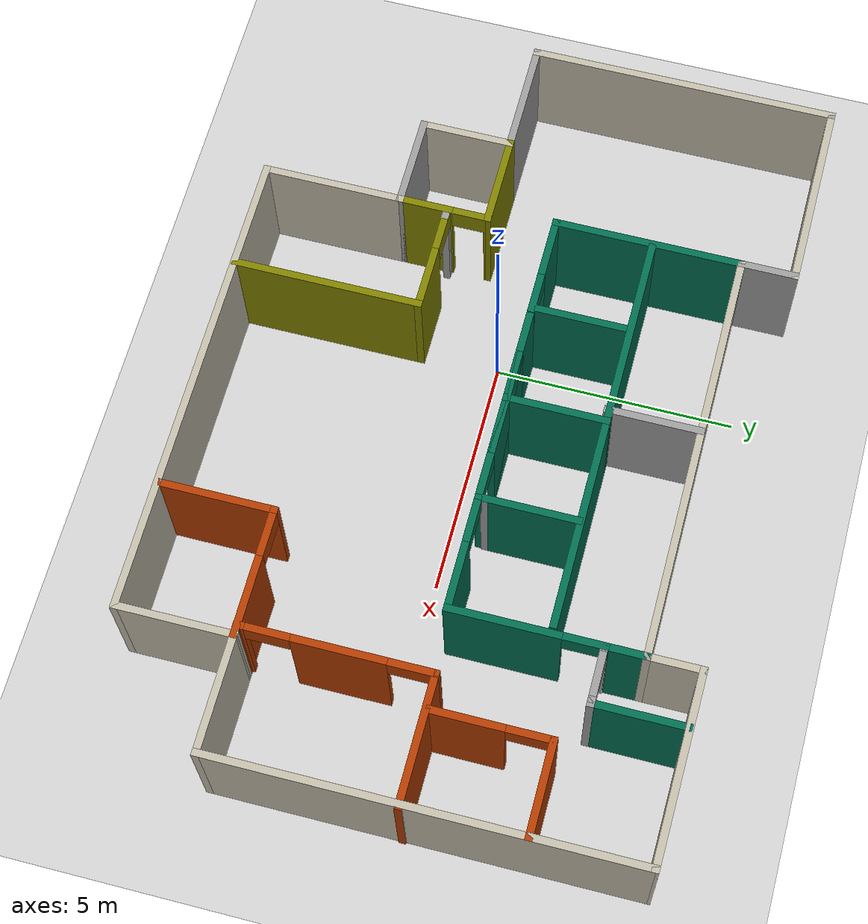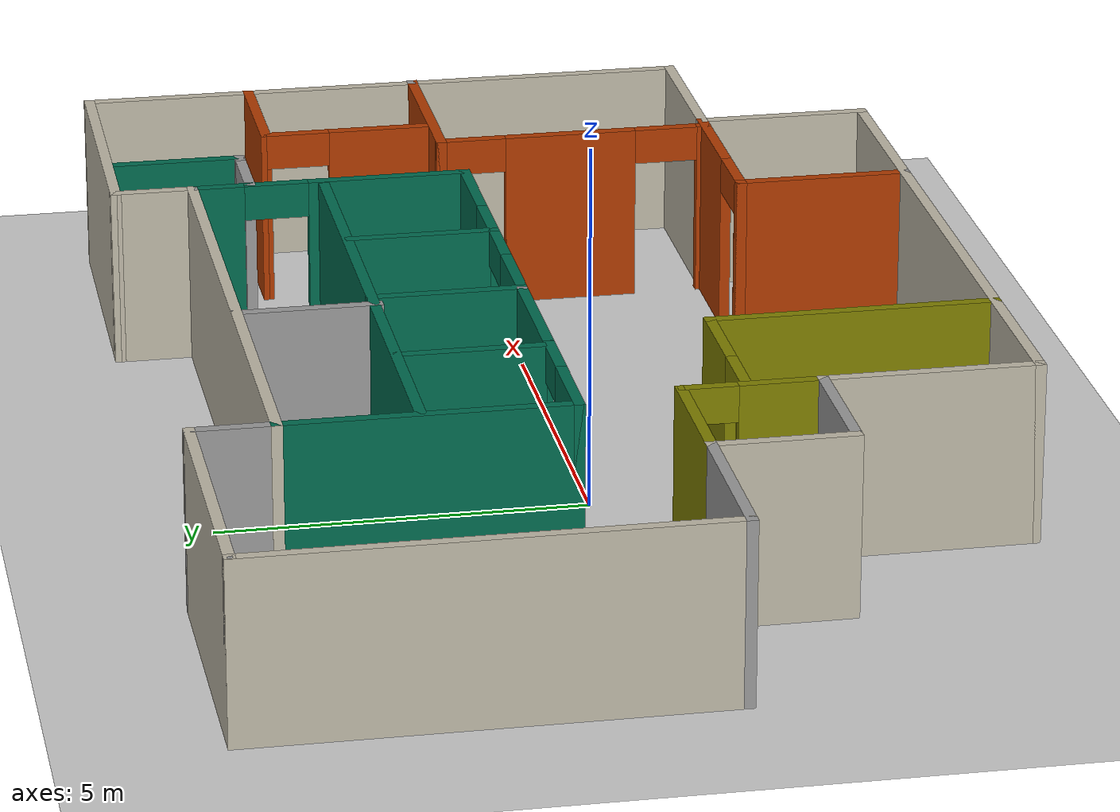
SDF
<sdf version="1.6">
 <world name="default">
  <model name="ground_plane">
   <static>1</static>
   <link name="link">
    <collision name="collision">
     <geometry><plane><normal>0 0 1</normal><size>100 100</size></plane></geometry>
     <surface>
      <contact><collide_bitmask>65535</collide_bitmask></contact>
      <friction><ode><mu>100</mu><mu2>50</mu2></ode></friction>
     </surface>
    </collision>
    <visual name="visual">
     <cast_shadows>0</cast_shadows>
     <geometry><plane><normal>0 0 1</normal><size>100 100</size></plane></geometry>
     <material>
      <script><uri>file://media/materials/scripts/gazebo.material</uri><name>Gazebo/Grey</name></script>
     </material>
    </visual>
   </link>
  </model>
  <model name="Building">
   <pose>1.88186 0.04983 0 0 -0 0</pose>
   <link name="Wall_10">
    <collision name="Wall_10_Collision">
     <geometry><box><size>4 0.15 2.5</size></box></geometry>
     <pose>0 0 1.25 0 -0 0</pose>
    </collision>
    <visual name="Wall_10_Visual">
     <pose>0 0 1.25 0 -0 0</pose>
     <geometry><box><size>4 0.15 2.5</size></box></geometry>
     <material>
      <script><uri>file://media/materials/scripts/gazebo.material</uri><name>Gazebo/Grey</name></script>
      <ambient>0.745098 0.721569 0.654902 1</ambient>
     </material>
     <meta><layer>0</layer></meta>
    </visual>
    <pose>6.24414 5.46217 0 0 0 -0.011947</pose>
   </link>
   <link name="Wall_11">
    <collision name="Wall_11_Collision">
     <geometry><box><size>8.75 0.15 2.5</size></box></geometry>
     <pose>0 0 1.25 0 -0 0</pose>
    </collision>
    <visual name="Wall_11_Visual">
     <pose>0 0 1.25 0 -0 0</pose>
     <geometry><box><size>8.75 0.15 2.5</size></box></geometry>
     <material>
      <script><uri>file://media/materials/scripts/gazebo.material</uri><name>Gazebo/Grey</name></script>
      <ambient>0.745098 0.721569 0.654902 1</ambient>
     </material>
     <meta><layer>0</layer></meta>
    </visual>
    <pose>8.16914 1.13917 0 0 0 -1.5708</pose>
   </link>
   <link name="Wall_12">
    <collision name="Wall_12_Collision">
     <geometry><box><size>2.5 0.15 2.5</size></box></geometry>
     <pose>0 0 1.25 0 -0 0</pose>
    </collision>
    <visual name="Wall_12_Visual">
     <pose>0 0 1.25 0 -0 0</pose>
     <geometry><box><size>2.5 0.15 2.5</size></box></geometry>
     <material>
      <script><uri>file://media/materials/scripts/gazebo.material</uri><name>Gazebo/Grey</name></script>
      <ambient>0.745098 0.721569 0.654902 1</ambient>
     </material>
     <meta><layer>0</layer></meta>
    </visual>
    <pose>6.99438 -3.1605 0 0 -0 3.14131</pose>
   </link>
   <link name="Wall_13">
    <collision name="Wall_13_Collision">
     <geometry><box><size>2.5 0.15 2.5</size></box></geometry>
     <pose>0 0 1.25 0 -0 0</pose>
    </collision>
    <visual name="Wall_13_Visual">
     <pose>0 0 1.25 0 -0 0</pose>
     <geometry><box><size>2.5 0.15 2.5</size></box></geometry>
     <material>
      <script><uri>file://media/materials/scripts/gazebo.material</uri><name>Gazebo/Grey</name></script>
      <ambient>0.745098 0.721569 0.654902 1</ambient>
     </material>
     <meta><layer>0</layer></meta>
    </visual>
    <pose>5.81961 -4.33517 0 0 0 -1.5708</pose>
   </link>
   <link name="Wall_14">
    <collision name="Wall_14_Collision">
     <geometry><box><size>10 0.15 2.5</size></box></geometry>
     <pose>0 0 1.25 0 -0 0</pose>
    </collision>
    <visual name="Wall_14_Visual">
     <pose>0 0 1.25 0 -0 0</pose>
     <geometry><box><size>10 0.15 2.5</size></box></geometry>
     <material>
      <script><uri>file://media/materials/scripts/gazebo.material</uri><name>Gazebo/Grey</name></script>
      <ambient>0.745098 0.721569 0.654902 1</ambient>
     </material>
     <meta><layer>0</layer></meta>
    </visual>
    <pose>0.894608 -5.51017 0 0 -0 3.14159</pose>
   </link>
   <link name="Wall_15">
    <collision name="Wall_15_Collision">
     <geometry><box><size>3 0.15 2.5</size></box></geometry>
     <pose>0 0 1.25 0 -0 0</pose>
    </collision>
    <visual name="Wall_15_Visual">
     <pose>0 0 1.25 0 -0 0</pose>
     <geometry><box><size>3 0.15 2.5</size></box></geometry>
     <material>
      <script><uri>file://media/materials/scripts/gazebo.material</uri><name>Gazebo/Grey</name></script>
      <ambient>0.745098 0.721569 0.654902 1</ambient>
     </material>
     <meta><layer>0</layer></meta>
    </visual>
    <pose>-4.03062 -4.085 0 0 -0 1.57096</pose>
   </link>
   <link name="Wall_16">
    <collision name="Wall_16_Collision">
     <geometry><box><size>2 0.15 2.5</size></box></geometry>
     <pose>0 0 1.25 0 -0 0</pose>
    </collision>
    <visual name="Wall_16_Visual">
     <pose>0 0 1.25 0 -0 0</pose>
     <geometry><box><size>2 0.15 2.5</size></box></geometry>
     <material>
      <script><uri>file://media/materials/scripts/gazebo.material</uri><name>Gazebo/Grey</name></script>
      <ambient>1 1 1 1</ambient>
     </material>
     <meta><layer>0</layer></meta>
    </visual>
    <pose>-4.95585 -2.65983 0 0 -0 3.14159</pose>
   </link>
   <link name="Wall_17">
    <collision name="Wall_17_Collision">
     <geometry><box><size>2 0.15 2.5</size></box></geometry>
     <pose>0 0 1.25 0 -0 0</pose>
    </collision>
    <visual name="Wall_17_Visual">
     <pose>0 0 1.25 0 -0 0</pose>
     <geometry><box><size>2 0.15 2.5</size></box></geometry>
     <material>
      <script><uri>file://media/materials/scripts/gazebo.material</uri><name>Gazebo/Grey</name></script>
      <ambient>0.745098 0.721569 0.654902 1</ambient>
     </material>
     <meta><layer>0</layer></meta>
    </visual>
    <pose>-5.88086 -1.73483 0 0 -0 1.5708</pose>
   </link>
   <link name="Wall_18">
    <collision name="Wall_18_Collision">
     <geometry><box><size>2.471 0.15 2.5</size></box></geometry>
     <pose>0 0 1.25 0 -0 0</pose>
    </collision>
    <visual name="Wall_18_Visual">
     <pose>0 0 1.25 0 -0 0</pose>
     <geometry><box><size>2.471 0.15 2.5</size></box></geometry>
     <material>
      <script><uri>file://media/materials/scripts/gazebo.material</uri><name>Gazebo/Grey</name></script>
      <ambient>1 1 1 1</ambient>
     </material>
     <meta><layer>0</layer></meta>
    </visual>
    <pose>-7.04136 -0.809827 0 0 -0 3.14159</pose>
   </link>
   <link name="Wall_19">
    <collision name="Wall_19_Collision">
     <geometry><box><size>6.47 0.15 2.5</size></box></geometry>
     <pose>0 0 1.25 0 -0 0</pose>
    </collision>
    <visual name="Wall_19_Visual">
     <pose>0 0 1.25 0 -0 0</pose>
     <geometry><box><size>6.47 0.15 2.5</size></box></geometry>
     <material>
      <script><uri>file://media/materials/scripts/gazebo.material</uri><name>Gazebo/Grey</name></script>
      <ambient>0.745098 0.721569 0.654902 1</ambient>
     </material>
     <meta><layer>0</layer></meta>
    </visual>
    <pose>-8.20186 2.35017 0 0 -0 1.5708</pose>
   </link>
   <link name="Wall_20">
    <collision name="Wall_20_Collision">
     <geometry><box><size>0.15 0.15 2.5</size></box></geometry>
     <pose>0 0 1.25 0 -0 0</pose>
    </collision>
    <visual name="Wall_20_Visual">
     <pose>0 0 1.25 0 -0 0</pose>
     <geometry><box><size>0.15 0.15 2.5</size></box></geometry>
     <material>
      <script><uri>file://media/materials/scripts/gazebo.material</uri><name>Gazebo/Grey</name></script>
      <ambient>1 1 1 1</ambient>
     </material>
     <meta><layer>0</layer></meta>
    </visual>
    <pose>-8.20186 5.51017 0 0 -0 0</pose>
   </link>
   <link name="Wall_22">
    <collision name="Wall_22_Collision">
     <geometry><box><size>2 0.15 2.5</size></box></geometry>
     <pose>0 0 1.25 0 -0 0</pose>
    </collision>
    <visual name="Wall_22_Visual">
     <pose>0 0 1.25 0 -0 0</pose>
     <geometry><box><size>2 0.15 2.5</size></box></geometry>
     <material>
      <script><uri>file://media/materials/scripts/gazebo.material</uri><name>Gazebo/Grey</name></script>
      <ambient>0.498039 0.498039 0 1</ambient>
     </material>
     <meta><layer>0</layer></meta>
    </visual>
    <pose>-4.95585 -0.809827 0 0 -0 0</pose>
   </link>
   <link name="Wall_23">
    <pose>-4.03085 -1.73483 0 0 0 -1.5708</pose>
    <visual name="Wall_23_Visual_0">
     <pose>-0.94307 0 1.25 0 -0 0</pose>
     <geometry><box><size>0.113861 0.15 2.5</size></box></geometry>
     <material>
      <script><uri>file://media/materials/scripts/gazebo.material</uri><name>Gazebo/Grey</name></script>
      <ambient>0.498039 0.498039 0 1</ambient>
     </material>
     <meta><layer>0</layer></meta>
    </visual>
    <collision name="Wall_23_Collision_0">
     <geometry><box><size>0.113861 0.15 2.5</size></box></geometry>
     <pose>-0.94307 0 1.25 0 -0 0</pose>
    </collision>
    <visual name="Wall_23_Visual_1">
     <pose>0.40693 0 1.25 0 -0 0</pose>
     <geometry><box><size>1.18614 0.15 2.5</size></box></geometry>
     <material>
      <script><uri>file://media/materials/scripts/gazebo.material</uri><name>Gazebo/Grey</name></script>
      <ambient>0.498039 0.498039 0 1</ambient>
     </material>
     <meta><layer>0</layer></meta>
    </visual>
    <collision name="Wall_23_Collision_1">
     <geometry><box><size>1.18614 0.15 2.5</size></box></geometry>
     <pose>0.40693 0 1.25 0 -0 0</pose>
    </collision>
    <visual name="Wall_23_Visual_2">
     <pose>-0.536139 0 2.25 0 -0 0</pose>
     <geometry><box><size>0.7 0.15 0.5</size></box></geometry>
     <material>
      <script><uri>file://media/materials/scripts/gazebo.material</uri><name>Gazebo/Grey</name></script>
      <ambient>0.498039 0.498039 0 1</ambient>
     </material>
     <meta><layer>0</layer></meta>
    </visual>
    <collision name="Wall_23_Collision_2">
     <geometry><box><size>0.7 0.15 0.5</size></box></geometry>
     <pose>-0.536139 0 2.25 0 -0 0</pose>
    </collision>
   </link>
   <link name="Wall_24">
    <collision name="Wall_24_Collision">
     <geometry><box><size>0.15 0.15 2.5</size></box></geometry>
     <pose>0 0 1.25 0 -0 0</pose>
    </collision>
    <visual name="Wall_24_Visual">
     <pose>0 0 1.25 0 -0 0</pose>
     <geometry><box><size>0.15 0.15 2.5</size></box></geometry>
     <material>
      <script><uri>file://media/materials/scripts/gazebo.material</uri><name>Gazebo/Grey</name></script>
      <ambient>1 1 1 1</ambient>
     </material>
     <meta><layer>0</layer></meta>
    </visual>
    <pose>-4.03085 -2.65983 0 0 -0 0</pose>
   </link>
   <link name="Wall_28">
    <collision name="Wall_28_Collision">
     <geometry><box><size>4 0.15 2.5</size></box></geometry>
     <pose>0 0 1.25 0 -0 0</pose>
    </collision>
    <visual name="Wall_28_Visual">
     <pose>0 0 1.25 0 -0 0</pose>
     <geometry><box><size>4 0.15 2.5</size></box></geometry>
     <material>
      <script><uri>file://media/materials/scripts/gazebo.material</uri><name>Gazebo/Grey</name></script>
      <ambient>0.498039 0.498039 0 1</ambient>
     </material>
     <meta><layer>0</layer></meta>
    </visual>
    <pose>-1.78286 -3.58433 0 0 -0 1.5708</pose>
   </link>
   <link name="Wall_29">
    <pose>-2.83286 -1.65932 0 0 -0 3.14159</pose>
    <visual name="Wall_29_Visual_0">
     <pose>-0.433114 0 1.25 0 -0 0</pose>
     <geometry><box><size>1.38377 0.15 2.5</size></box></geometry>
     <material>
      <script><uri>file://media/materials/scripts/gazebo.material</uri><name>Gazebo/Grey</name></script>
      <ambient>0.498039 0.498039 0 1</ambient>
     </material>
     <meta><layer>0</layer></meta>
    </visual>
    <collision name="Wall_29_Collision_0">
     <geometry><box><size>1.38377 0.15 2.5</size></box></geometry>
     <pose>-0.433114 0 1.25 0 -0 0</pose>
    </collision>
    <visual name="Wall_29_Visual_1">
     <pose>0.691886 0 2.25 0 -0 0</pose>
     <geometry><box><size>0.866229 0.15 0.5</size></box></geometry>
     <material>
      <script><uri>file://media/materials/scripts/gazebo.material</uri><name>Gazebo/Grey</name></script>
      <ambient>0.498039 0.498039 0 1</ambient>
     </material>
     <meta><layer>0</layer></meta>
    </visual>
    <collision name="Wall_29_Collision_1">
     <geometry><box><size>0.866229 0.15 0.5</size></box></geometry>
     <pose>0.691886 0 2.25 0 -0 0</pose>
    </collision>
   </link>
   <link name="Wall_30">
    <collision name="Wall_30_Collision">
     <geometry><box><size>0.16 0.15 2.5</size></box></geometry>
     <pose>0 0 1.25 0 -0 0</pose>
    </collision>
    <visual name="Wall_30_Visual">
     <pose>0 0 1.25 0 -0 0</pose>
     <geometry><box><size>0.16 0.15 2.5</size></box></geometry>
     <material>
      <script><uri>file://media/materials/scripts/gazebo.material</uri><name>Gazebo/Grey</name></script>
      <ambient>1 1 1 1</ambient>
     </material>
     <meta><layer>0</layer></meta>
    </visual>
    <pose>-3.87786 -1.65932 0 0 -0 0</pose>
   </link>
   <link name="Wall_32">
    <pose>4.51961 -3.16017 0 0 -0 3.14159</pose>
    <visual name="Wall_32_Visual_0">
     <pose>-0.522117 0 1.25 0 -0 0</pose>
     <geometry><box><size>1.70577 0.15 2.5</size></box></geometry>
     <material>
      <script><uri>file://media/materials/scripts/gazebo.material</uri><name>Gazebo/Grey</name></script>
      <ambient>0.686275 0.227451 0 1</ambient>
     </material>
     <meta><layer>0</layer></meta>
    </visual>
    <collision name="Wall_32_Collision_0">
     <geometry><box><size>1.70577 0.15 2.5</size></box></geometry>
     <pose>-0.522117 0 1.25 0 -0 0</pose>
    </collision>
    <visual name="Wall_32_Visual_1">
     <pose>1.30288 0 1.25 0 -0 0</pose>
     <geometry><box><size>0.144234 0.15 2.5</size></box></geometry>
     <material>
      <script><uri>file://media/materials/scripts/gazebo.material</uri><name>Gazebo/Grey</name></script>
      <ambient>0.686275 0.227451 0 1</ambient>
     </material>
     <meta><layer>0</layer></meta>
    </visual>
    <collision name="Wall_32_Collision_1">
     <geometry><box><size>0.144234 0.15 2.5</size></box></geometry>
     <pose>1.30288 0 1.25 0 -0 0</pose>
    </collision>
    <visual name="Wall_32_Visual_2">
     <pose>0.780766 0 2.25 0 -0 0</pose>
     <geometry><box><size>0.9 0.15 0.5</size></box></geometry>
     <material>
      <script><uri>file://media/materials/scripts/gazebo.material</uri><name>Gazebo/Grey</name></script>
      <ambient>0.686275 0.227451 0 1</ambient>
     </material>
     <meta><layer>0</layer></meta>
    </visual>
    <collision name="Wall_32_Collision_2">
     <geometry><box><size>0.9 0.15 0.5</size></box></geometry>
     <pose>0.780766 0 2.25 0 -0 0</pose>
    </collision>
   </link>
   <link name="Wall_33">
    <collision name="Wall_33_Collision">
     <geometry><box><size>2.5 0.15 2.5</size></box></geometry>
     <pose>0 0 1.25 0 -0 0</pose>
    </collision>
    <visual name="Wall_33_Visual">
     <pose>0 0 1.25 0 -0 0</pose>
     <geometry><box><size>2.5 0.15 2.5</size></box></geometry>
     <material>
      <script><uri>file://media/materials/scripts/gazebo.material</uri><name>Gazebo/Grey</name></script>
      <ambient>0.686275 0.227451 0 1</ambient>
     </material>
     <meta><layer>0</layer></meta>
    </visual>
    <pose>3.21961 -4.33517 0 0 0 -1.5708</pose>
   </link>
   <link name="Wall_34">
    <collision name="Wall_34_Collision">
     <geometry><box><size>0.15 0.15 2.5</size></box></geometry>
     <pose>0 0 1.25 0 -0 0</pose>
    </collision>
    <visual name="Wall_34_Visual">
     <pose>0 0 1.25 0 -0 0</pose>
     <geometry><box><size>0.15 0.15 2.5</size></box></geometry>
     <material>
      <script><uri>file://media/materials/scripts/gazebo.material</uri><name>Gazebo/Grey</name></script>
      <ambient>1 1 1 1</ambient>
     </material>
     <meta><layer>0</layer></meta>
    </visual>
    <pose>3.21961 -5.51017 0 0 -0 0</pose>
   </link>
   <link name="Wall_36">
    <pose>5.61815 -1.23783 0 0 -0 1.5708</pose>
    <visual name="Wall_36_Visual_0">
     <pose>-1.89371 0 1.25 0 -0 0</pose>
     <geometry><box><size>0.212579 0.15 2.5</size></box></geometry>
     <material>
      <script><uri>file://media/materials/scripts/gazebo.material</uri><name>Gazebo/Grey</name></script>
      <ambient>0.686275 0.227451 0 1</ambient>
     </material>
     <meta><layer>0</layer></meta>
    </visual>
    <collision name="Wall_36_Collision_0">
     <geometry><box><size>0.212579 0.15 2.5</size></box></geometry>
     <pose>-1.89371 0 1.25 0 -0 0</pose>
    </collision>
    <visual name="Wall_36_Visual_1">
     <pose>0.054434 0 1.25 0 -0 0</pose>
     <geometry><box><size>1.88371 0.15 2.5</size></box></geometry>
     <material>
      <script><uri>file://media/materials/scripts/gazebo.material</uri><name>Gazebo/Grey</name></script>
      <ambient>0.686275 0.227451 0 1</ambient>
     </material>
     <meta><layer>0</layer></meta>
    </visual>
    <collision name="Wall_36_Collision_1">
     <geometry><box><size>1.88371 0.15 2.5</size></box></geometry>
     <pose>0.054434 0 1.25 0 -0 0</pose>
    </collision>
    <visual name="Wall_36_Visual_2">
     <pose>1.94815 0 1.25 0 -0 0</pose>
     <geometry><box><size>0.10371 0.15 2.5</size></box></geometry>
     <material>
      <script><uri>file://media/materials/scripts/gazebo.material</uri><name>Gazebo/Grey</name></script>
      <ambient>0.686275 0.227451 0 1</ambient>
     </material>
     <meta><layer>0</layer></meta>
    </visual>
    <collision name="Wall_36_Collision_2">
     <geometry><box><size>0.10371 0.15 2.5</size></box></geometry>
     <pose>1.94815 0 1.25 0 -0 0</pose>
    </collision>
    <visual name="Wall_36_Visual_3">
     <pose>-1.33742 0 2.25 0 -0 0</pose>
     <geometry><box><size>0.9 0.15 0.5</size></box></geometry>
     <material>
      <script><uri>file://media/materials/scripts/gazebo.material</uri><name>Gazebo/Grey</name></script>
      <ambient>0.686275 0.227451 0 1</ambient>
     </material>
     <meta><layer>0</layer></meta>
    </visual>
    <collision name="Wall_36_Collision_3">
     <geometry><box><size>0.9 0.15 0.5</size></box></geometry>
     <pose>-1.33742 0 2.25 0 -0 0</pose>
    </collision>
    <visual name="Wall_36_Visual_4">
     <pose>1.44629 0 2.25 0 -0 0</pose>
     <geometry><box><size>0.9 0.15 0.5</size></box></geometry>
     <material>
      <script><uri>file://media/materials/scripts/gazebo.material</uri><name>Gazebo/Grey</name></script>
      <ambient>0.686275 0.227451 0 1</ambient>
     </material>
     <meta><layer>0</layer></meta>
    </visual>
    <collision name="Wall_36_Collision_4">
     <geometry><box><size>0.9 0.15 0.5</size></box></geometry>
     <pose>1.44629 0 2.25 0 -0 0</pose>
    </collision>
   </link>
   <link name="Wall_37">
    <collision name="Wall_37_Collision">
     <geometry><box><size>2.73371 0.15 2.5</size></box></geometry>
     <pose>0 0 1.25 0 -0 0</pose>
    </collision>
    <visual name="Wall_37_Visual">
     <pose>0 0 1.25 0 -0 0</pose>
     <geometry><box><size>2.73371 0.15 2.5</size></box></geometry>
     <material>
      <script><uri>file://media/materials/scripts/gazebo.material</uri><name>Gazebo/Grey</name></script>
      <ambient>0.686275 0.227451 0 1</ambient>
     </material>
     <meta><layer>0</layer></meta>
    </visual>
    <pose>6.91 0.687136 0 0 0 -2.9e-05</pose>
   </link>
   <link name="Wall_38">
    <collision name="Wall_38_Collision">
     <geometry><box><size>0.15 0.15 2.5</size></box></geometry>
     <pose>0 0 1.25 0 -0 0</pose>
    </collision>
    <visual name="Wall_38_Visual">
     <pose>0 0 1.25 0 -0 0</pose>
     <geometry><box><size>0.15 0.15 2.5</size></box></geometry>
     <material>
      <script><uri>file://media/materials/scripts/gazebo.material</uri><name>Gazebo/Grey</name></script>
      <ambient>1 1 1 1</ambient>
     </material>
     <meta><layer>0</layer></meta>
    </visual>
    <pose>8.20185 0.687099 0 0 -0 0</pose>
   </link>
   <link name="Wall_40">
    <pose>6.31814 1.93617 0 0 -0 1.5708</pose>
    <visual name="Wall_40_Visual_0">
     <pose>-0.490246 0 1.25 0 -0 0</pose>
     <geometry><box><size>1.51951 0.15 2.5</size></box></geometry>
     <material>
      <script><uri>file://media/materials/scripts/gazebo.material</uri><name>Gazebo/Grey</name></script>
      <ambient>0.686275 0.227451 0 1</ambient>
     </material>
     <meta><layer>0</layer></meta>
    </visual>
    <collision name="Wall_40_Collision_0">
     <geometry><box><size>1.51951 0.15 2.5</size></box></geometry>
     <pose>-0.490246 0 1.25 0 -0 0</pose>
    </collision>
    <visual name="Wall_40_Visual_1">
     <pose>1.20975 0 1.25 0 -0 0</pose>
     <geometry><box><size>0.080492 0.15 2.5</size></box></geometry>
     <material>
      <script><uri>file://media/materials/scripts/gazebo.material</uri><name>Gazebo/Grey</name></script>
      <ambient>0.686275 0.227451 0 1</ambient>
     </material>
     <meta><layer>0</layer></meta>
    </visual>
    <collision name="Wall_40_Collision_1">
     <geometry><box><size>0.080492 0.15 2.5</size></box></geometry>
     <pose>1.20975 0 1.25 0 -0 0</pose>
    </collision>
    <visual name="Wall_40_Visual_2">
     <pose>0.719508 0 2.25 0 -0 0</pose>
     <geometry><box><size>0.9 0.15 0.5</size></box></geometry>
     <material>
      <script><uri>file://media/materials/scripts/gazebo.material</uri><name>Gazebo/Grey</name></script>
      <ambient>0.686275 0.227451 0 1</ambient>
     </material>
     <meta><layer>0</layer></meta>
    </visual>
    <collision name="Wall_40_Collision_2">
     <geometry><box><size>0.9 0.15 0.5</size></box></geometry>
     <pose>0.719508 0 2.25 0 -0 0</pose>
    </collision>
   </link>
   <link name="Wall_41">
    <collision name="Wall_41_Collision">
     <geometry><box><size>2.001 0.15 2.5</size></box></geometry>
     <pose>0 0 1.25 0 -0 0</pose>
    </collision>
    <visual name="Wall_41_Visual">
     <pose>0 0 1.25 0 -0 0</pose>
     <geometry><box><size>2.001 0.15 2.5</size></box></geometry>
     <material>
      <script><uri>file://media/materials/scripts/gazebo.material</uri><name>Gazebo/Grey</name></script>
      <ambient>0.686275 0.227451 0 1</ambient>
     </material>
     <meta><layer>0</layer></meta>
    </visual>
    <pose>7.24364 3.11117 0 0 -0 0</pose>
   </link>
   <link name="Wall_44">
    <collision name="Wall_44_Collision">
     <geometry><box><size>0.15 0.15 2.5</size></box></geometry>
     <pose>0 0 1.25 0 -0 0</pose>
    </collision>
    <visual name="Wall_44_Visual">
     <pose>0 0 1.25 0 -0 0</pose>
     <geometry><box><size>0.15 0.15 2.5</size></box></geometry>
     <material>
      <script><uri>file://media/materials/scripts/gazebo.material</uri><name>Gazebo/Grey</name></script>
      <ambient>1 1 1 1</ambient>
     </material>
     <meta><layer>0</layer></meta>
    </visual>
    <pose>5.37778 3.60414 0 0 -0 0</pose>
   </link>
   <link name="Wall_46">
    <collision name="Wall_46_Collision">
     <geometry><box><size>4 0.15 2.5</size></box></geometry>
     <pose>0 0 1.25 0 -0 0</pose>
    </collision>
    <visual name="Wall_46_Visual">
     <pose>0 0 1.25 0 -0 0</pose>
     <geometry><box><size>4 0.15 2.5</size></box></geometry>
     <material>
      <script><uri>file://media/materials/scripts/gazebo.material</uri><name>Gazebo/Grey</name></script>
      <ambient>0 0.415686 0.305882 1</ambient>
     </material>
     <meta><layer>0</layer></meta>
    </visual>
    <pose>-4.28085 2.48517 0 0 0 -1.5708</pose>
   </link>
   <link name="Wall_47">
    <pose>0.019145 0.560173 0 0 -0 0</pose>
    <visual name="Wall_47_Visual_0">
     <pose>-3.71874 0 1.25 0 -0 0</pose>
     <geometry><box><size>1.31252 0.15 2.5</size></box></geometry>
     <material>
      <script><uri>file://media/materials/scripts/gazebo.material</uri><name>Gazebo/Grey</name></script>
      <ambient>0 0.415686 0.305882 1</ambient>
     </material>
     <meta><layer>0</layer></meta>
    </visual>
    <collision name="Wall_47_Collision_0">
     <geometry><box><size>1.31252 0.15 2.5</size></box></geometry>
     <pose>-3.71874 0 1.25 0 -0 0</pose>
    </collision>
    <visual name="Wall_47_Visual_1">
     <pose>-0.57823 0 1.25 0 -0 0</pose>
     <geometry><box><size>3.1685 0.15 2.5</size></box></geometry>
     <material>
      <script><uri>file://media/materials/scripts/gazebo.material</uri><name>Gazebo/Grey</name></script>
      <ambient>0 0.415686 0.305882 1</ambient>
     </material>
     <meta><layer>0</layer></meta>
    </visual>
    <collision name="Wall_47_Collision_1">
     <geometry><box><size>3.1685 0.15 2.5</size></box></geometry>
     <pose>-0.57823 0 1.25 0 -0 0</pose>
    </collision>
    <visual name="Wall_47_Visual_2">
     <pose>-0.134671 0 1.25 0 -0 0</pose>
     <geometry><box><size>2.28138 0.15 2.5</size></box></geometry>
     <material>
      <script><uri>file://media/materials/scripts/gazebo.material</uri><name>Gazebo/Grey</name></script>
      <ambient>0 0.415686 0.305882 1</ambient>
     </material>
     <meta><layer>0</layer></meta>
    </visual>
    <collision name="Wall_47_Collision_2">
     <geometry><box><size>2.28138 0.15 2.5</size></box></geometry>
     <pose>-0.134671 0 1.25 0 -0 0</pose>
    </collision>
    <visual name="Wall_47_Visual_3">
     <pose>1.96076 0 1.25 0 -0 0</pose>
     <geometry><box><size>0.109477 0.15 2.5</size></box></geometry>
     <material>
      <script><uri>file://media/materials/scripts/gazebo.material</uri><name>Gazebo/Grey</name></script>
      <ambient>0 0.415686 0.305882 1</ambient>
     </material>
     <meta><layer>0</layer></meta>
    </visual>
    <collision name="Wall_47_Collision_3">
     <geometry><box><size>0.109477 0.15 2.5</size></box></geometry>
     <pose>1.96076 0 1.25 0 -0 0</pose>
    </collision>
    <visual name="Wall_47_Visual_4">
     <pose>3.64525 0 1.25 0 -0 0</pose>
     <geometry><box><size>1.4595 0.15 2.5</size></box></geometry>
     <material>
      <script><uri>file://media/materials/scripts/gazebo.material</uri><name>Gazebo/Grey</name></script>
      <ambient>0 0.415686 0.305882 1</ambient>
     </material>
     <meta><layer>0</layer></meta>
    </visual>
    <collision name="Wall_47_Collision_4">
     <geometry><box><size>1.4595 0.15 2.5</size></box></geometry>
     <pose>3.64525 0 1.25 0 -0 0</pose>
    </collision>
    <visual name="Wall_47_Visual_5">
     <pose>-2.61892 0 2.25 0 -0 0</pose>
     <geometry><box><size>0.887117 0.15 0.5</size></box></geometry>
     <material>
      <script><uri>file://media/materials/scripts/gazebo.material</uri><name>Gazebo/Grey</name></script>
      <ambient>0 0.415686 0.305882 1</ambient>
     </material>
     <meta><layer>0</layer></meta>
    </visual>
    <collision name="Wall_47_Collision_5">
     <geometry><box><size>0.887117 0.15 0.5</size></box></geometry>
     <pose>-2.61892 0 2.25 0 -0 0</pose>
    </collision>
    <visual name="Wall_47_Visual_6">
     <pose>1.45602 0 2.25 0 -0 0</pose>
     <geometry><box><size>0.9 0.15 0.5</size></box></geometry>
     <material>
      <script><uri>file://media/materials/scripts/gazebo.material</uri><name>Gazebo/Grey</name></script>
      <ambient>0 0.415686 0.305882 1</ambient>
     </material>
     <meta><layer>0</layer></meta>
    </visual>
    <collision name="Wall_47_Collision_6">
     <geometry><box><size>0.9 0.15 0.5</size></box></geometry>
     <pose>1.45602 0 2.25 0 -0 0</pose>
    </collision>
    <visual name="Wall_47_Visual_7">
     <pose>1.45602 0 2.25 0 -0 0</pose>
     <geometry><box><size>0.9 0.15 0.5</size></box></geometry>
     <material>
      <script><uri>file://media/materials/scripts/gazebo.material</uri><name>Gazebo/Grey</name></script>
      <ambient>0 0.415686 0.305882 1</ambient>
     </material>
     <meta><layer>0</layer></meta>
    </visual>
    <collision name="Wall_47_Collision_7">
     <geometry><box><size>0.9 0.15 0.5</size></box></geometry>
     <pose>1.45602 0 2.25 0 -0 0</pose>
    </collision>
    <visual name="Wall_47_Visual_8">
     <pose>2.4655 0 2.25 0 -0 0</pose>
     <geometry><box><size>0.9 0.15 0.5</size></box></geometry>
     <material>
      <script><uri>file://media/materials/scripts/gazebo.material</uri><name>Gazebo/Grey</name></script>
      <ambient>0 0.415686 0.305882 1</ambient>
     </material>
     <meta><layer>0</layer></meta>
    </visual>
    <collision name="Wall_47_Collision_8">
     <geometry><box><size>0.9 0.15 0.5</size></box></geometry>
     <pose>2.4655 0 2.25 0 -0 0</pose>
    </collision>
   </link>
   <link name="Wall_48">
    <pose>4.31914 2.48517 0 0 -0 1.5708</pose>
    <visual name="Wall_48_Visual_0">
     <pose>-0.849139 0 1.25 0 -0 0</pose>
     <geometry><box><size>2.30172 0.15 2.5</size></box></geometry>
     <material>
      <script><uri>file://media/materials/scripts/gazebo.material</uri><name>Gazebo/Grey</name></script>
      <ambient>0 0.415686 0.305882 1</ambient>
     </material>
     <meta><layer>0</layer></meta>
    </visual>
    <collision name="Wall_48_Collision_0">
     <geometry><box><size>2.30172 0.15 2.5</size></box></geometry>
     <pose>-0.849139 0 1.25 0 -0 0</pose>
    </collision>
    <visual name="Wall_48_Visual_1">
     <pose>1.60086 0 1.25 0 -0 0</pose>
     <geometry><box><size>0.798278 0.15 2.5</size></box></geometry>
     <material>
      <script><uri>file://media/materials/scripts/gazebo.material</uri><name>Gazebo/Grey</name></script>
      <ambient>0 0.415686 0.305882 1</ambient>
     </material>
     <meta><layer>0</layer></meta>
    </visual>
    <collision name="Wall_48_Collision_1">
     <geometry><box><size>0.798278 0.15 2.5</size></box></geometry>
     <pose>1.60086 0 1.25 0 -0 0</pose>
    </collision>
    <visual name="Wall_48_Visual_2">
     <pose>0.751722 0 2.25 0 -0 0</pose>
     <geometry><box><size>0.9 0.15 0.5</size></box></geometry>
     <material>
      <script><uri>file://media/materials/scripts/gazebo.material</uri><name>Gazebo/Grey</name></script>
      <ambient>0 0.415686 0.305882 1</ambient>
     </material>
     <meta><layer>0</layer></meta>
    </visual>
    <collision name="Wall_48_Collision_2">
     <geometry><box><size>0.9 0.15 0.5</size></box></geometry>
     <pose>0.751722 0 2.25 0 -0 0</pose>
    </collision>
   </link>
   <link name="Wall_49">
    <collision name="Wall_49_Collision">
     <geometry><box><size>0.15 0.15 2.5</size></box></geometry>
     <pose>0 0 1.25 0 -0 0</pose>
    </collision>
    <visual name="Wall_49_Visual">
     <pose>0 0 1.25 0 -0 0</pose>
     <geometry><box><size>0.15 0.15 2.5</size></box></geometry>
     <material>
      <script><uri>file://media/materials/scripts/gazebo.material</uri><name>Gazebo/Grey</name></script>
      <ambient>1 1 1 1</ambient>
     </material>
     <meta><layer>0</layer></meta>
    </visual>
    <pose>4.31914 4.41017 0 0 -0 0</pose>
   </link>
   <link name="Wall_51">
    <collision name="Wall_51_Collision">
     <geometry><box><size>8.5 0.15 2.5</size></box></geometry>
     <pose>0 0 1.25 0 -0 0</pose>
    </collision>
    <visual name="Wall_51_Visual">
     <pose>0 0 1.25 0 -0 0</pose>
     <geometry><box><size>8.5 0.15 2.5</size></box></geometry>
     <material>
      <script><uri>file://media/materials/scripts/gazebo.material</uri><name>Gazebo/Grey</name></script>
      <ambient>0 0.415686 0.305882 1</ambient>
     </material>
     <meta><layer>0</layer></meta>
    </visual>
    <pose>-0.033774 2.57779 0 0 -0 0</pose>
   </link>
   <link name="Wall_53">
    <collision name="Wall_53_Collision">
     <geometry><box><size>2 0.15 2.5</size></box></geometry>
     <pose>0 0 1.25 0 -0 0</pose>
    </collision>
    <visual name="Wall_53_Visual">
     <pose>0 0 1.25 0 -0 0</pose>
     <geometry><box><size>2 0.15 2.5</size></box></geometry>
     <material>
      <script><uri>file://media/materials/scripts/gazebo.material</uri><name>Gazebo/Grey</name></script>
      <ambient>0 0.415686 0.305882 1</ambient>
     </material>
     <meta><layer>0</layer></meta>
    </visual>
    <pose>-2.26691 1.61234 0 0 0 -1.5708</pose>
   </link>
   <link name="Wall_57">
    <collision name="Wall_57_Collision">
     <geometry><box><size>2 0.15 2.5</size></box></geometry>
     <pose>0 0 1.25 0 -0 0</pose>
    </collision>
    <visual name="Wall_57_Visual">
     <pose>0 0 1.25 0 -0 0</pose>
     <geometry><box><size>2 0.15 2.5</size></box></geometry>
     <material>
      <script><uri>file://media/materials/scripts/gazebo.material</uri><name>Gazebo/Grey</name></script>
      <ambient>0 0.415686 0.305882 1</ambient>
     </material>
     <meta><layer>0</layer></meta>
    </visual>
    <pose>1.98093 1.61234 0 0 0 -1.5708</pose>
   </link>
   <link name="Wall_58">
    <collision name="Wall_58_Collision">
     <geometry><box><size>0.15 0.15 2.5</size></box></geometry>
     <pose>0 0 1.25 0 -0 0</pose>
    </collision>
    <visual name="Wall_58_Visual">
     <pose>0 0 1.25 0 -0 0</pose>
     <geometry><box><size>0.15 0.15 2.5</size></box></geometry>
     <material>
      <script><uri>file://media/materials/scripts/gazebo.material</uri><name>Gazebo/Grey</name></script>
      <ambient>1 1 1 1</ambient>
     </material>
     <meta><layer>0</layer></meta>
    </visual>
    <pose>1.98093 0.687335 0 0 -0 0</pose>
   </link>
   <link name="Wall_6">
    <collision name="Wall_6_Collision">
     <geometry><box><size>4.071 0.15 2.5</size></box></geometry>
     <pose>0 0 1.25 0 -0 0</pose>
    </collision>
    <visual name="Wall_6_Visual">
     <pose>0 0 1.25 0 -0 0</pose>
     <geometry><box><size>4.071 0.15 2.5</size></box></geometry>
     <material>
      <script><uri>file://media/materials/scripts/gazebo.material</uri><name>Gazebo/Grey</name></script>
      <ambient>0.745098 0.721569 0.654902 1</ambient>
     </material>
     <meta><layer>0</layer></meta>
    </visual>
    <pose>-6.24136 5.51017 0 0 -0 0</pose>
   </link>
   <link name="Wall_60">
    <collision name="Wall_60_Collision">
     <geometry><box><size>2.011 0.15 2.5</size></box></geometry>
     <pose>0 0 1.25 0 -0 0</pose>
    </collision>
    <visual name="Wall_60_Visual">
     <pose>0 0 1.25 0 -0 0</pose>
     <geometry><box><size>2.011 0.15 2.5</size></box></geometry>
     <material>
      <script><uri>file://media/materials/scripts/gazebo.material</uri><name>Gazebo/Grey</name></script>
      <ambient>1 1 1 1</ambient>
     </material>
     <meta><layer>0</layer></meta>
    </visual>
    <pose>-0.446856 3.46767 0 0 0 -1.5708</pose>
   </link>
   <link name="Wall_62">
    <collision name="Wall_62_Collision">
     <geometry><box><size>2.168 0.15 2.5</size></box></geometry>
     <pose>0 0 1.25 0 -0 0</pose>
    </collision>
    <visual name="Wall_62_Visual">
     <pose>0 0 1.25 0 -0 0</pose>
     <geometry><box><size>2.168 0.15 2.5</size></box></geometry>
     <material>
      <script><uri>file://media/materials/scripts/gazebo.material</uri><name>Gazebo/Grey</name></script>
      <ambient>0 0.415686 0.305882 1</ambient>
     </material>
     <meta><layer>0</layer></meta>
    </visual>
    <pose>-0.203856 1.56917 0 0 0 -1.5708</pose>
   </link>
   <link name="Wall_63">
    <collision name="Wall_63_Collision">
     <geometry><box><size>0.15 0.15 2.5</size></box></geometry>
     <pose>0 0 1.25 0 -0 0</pose>
    </collision>
    <visual name="Wall_63_Visual">
     <pose>0 0 1.25 0 -0 0</pose>
     <geometry><box><size>0.15 0.15 2.5</size></box></geometry>
     <material>
      <script><uri>file://media/materials/scripts/gazebo.material</uri><name>Gazebo/Grey</name></script>
      <ambient>1 1 1 1</ambient>
     </material>
     <meta><layer>0</layer></meta>
    </visual>
    <pose>-0.203856 0.560173 0 0 -0 0</pose>
   </link>
   <link name="Wall_65">
    <collision name="Wall_65_Collision">
     <geometry><box><size>2 0.15 2.5</size></box></geometry>
     <pose>0 0 1.25 0 -0 0</pose>
    </collision>
    <visual name="Wall_65_Visual">
     <pose>0 0 1.25 0 -0 0</pose>
     <geometry><box><size>2 0.15 2.5</size></box></geometry>
     <material>
      <script><uri>file://media/materials/scripts/gazebo.material</uri><name>Gazebo/Grey</name></script>
      <ambient>0 0.415686 0.305882 1</ambient>
     </material>
     <meta><layer>0</layer></meta>
    </visual>
    <pose>5.46011 4.52514 0 0 0 -1.5708</pose>
   </link>
   <link name="Wall_66">
    <pose>4.91011 3.60014 0 0 -0 3.14159</pose>
    <visual name="Wall_66_Visual_0">
     <pose>-0.517786 0 1.25 0 -0 0</pose>
     <geometry><box><size>0.214428 0.15 2.5</size></box></geometry>
     <material>
      <script><uri>file://media/materials/scripts/gazebo.material</uri><name>Gazebo/Grey</name></script>
      <ambient>1 1 1 1</ambient>
     </material>
     <meta><layer>0</layer></meta>
    </visual>
    <collision name="Wall_66_Collision_0">
     <geometry><box><size>0.214428 0.15 2.5</size></box></geometry>
     <pose>-0.517786 0 1.25 0 -0 0</pose>
    </collision>
    <visual name="Wall_66_Visual_1">
     <pose>0.557214 0 1.25 0 -0 0</pose>
     <geometry><box><size>0.135572 0.15 2.5</size></box></geometry>
     <material>
      <script><uri>file://media/materials/scripts/gazebo.material</uri><name>Gazebo/Grey</name></script>
      <ambient>1 1 1 1</ambient>
     </material>
     <meta><layer>0</layer></meta>
    </visual>
    <collision name="Wall_66_Collision_1">
     <geometry><box><size>0.135572 0.15 2.5</size></box></geometry>
     <pose>0.557214 0 1.25 0 -0 0</pose>
    </collision>
    <visual name="Wall_66_Visual_2">
     <pose>0.039428 0 2.25 0 -0 0</pose>
     <geometry><box><size>0.9 0.15 0.5</size></box></geometry>
     <material>
      <script><uri>file://media/materials/scripts/gazebo.material</uri><name>Gazebo/Grey</name></script>
      <ambient>1 1 1 1</ambient>
     </material>
     <meta><layer>0</layer></meta>
    </visual>
    <collision name="Wall_66_Collision_2">
     <geometry><box><size>0.9 0.15 0.5</size></box></geometry>
     <pose>0.039428 0 2.25 0 -0 0</pose>
    </collision>
   </link>
   <link name="Wall_7">
    <collision name="Wall_7_Collision">
     <geometry><box><size>1.25 0.15 2.5</size></box></geometry>
     <pose>0 0 1.25 0 -0 0</pose>
    </collision>
    <visual name="Wall_7_Visual">
     <pose>0 0 1.25 0 -0 0</pose>
     <geometry><box><size>1.25 0.15 2.5</size></box></geometry>
     <material>
      <script><uri>file://media/materials/scripts/gazebo.material</uri><name>Gazebo/Grey</name></script>
      <ambient>1 1 1 1</ambient>
     </material>
     <meta><layer>0</layer></meta>
    </visual>
    <pose>-4.28085 4.96017 0 0 0 -1.5708</pose>
   </link>
   <link name="Wall_8">
    <collision name="Wall_8_Collision">
     <geometry><box><size>8.75 0.15 2.5</size></box></geometry>
     <pose>0 0 1.25 0 -0 0</pose>
    </collision>
    <visual name="Wall_8_Visual">
     <pose>0 0 1.25 0 -0 0</pose>
     <geometry><box><size>8.75 0.15 2.5</size></box></geometry>
     <material>
      <script><uri>file://media/materials/scripts/gazebo.material</uri><name>Gazebo/Grey</name></script>
      <ambient>0.745098 0.721569 0.654902 1</ambient>
     </material>
     <meta><layer>0</layer></meta>
    </visual>
    <pose>0.019145 4.41017 0 0 -0 0</pose>
   </link>
   <link name="Wall_9">
    <collision name="Wall_9_Collision">
     <geometry><box><size>1.225 0.15 2.5</size></box></geometry>
     <pose>0 0 1.25 0 -0 0</pose>
    </collision>
    <visual name="Wall_9_Visual">
     <pose>0 0 1.25 0 -0 0</pose>
     <geometry><box><size>1.225 0.15 2.5</size></box></geometry>
     <material>
      <script><uri>file://media/materials/scripts/gazebo.material</uri><name>Gazebo/Grey</name></script>
      <ambient>0.745098 0.721569 0.654902 1</ambient>
     </material>
     <meta><layer>0</layer></meta>
    </visual>
    <pose>4.31914 4.94767 0 0 -0 1.5708</pose>
   </link>
   <static>1</static>
  </model>
 </world>
</sdf>
